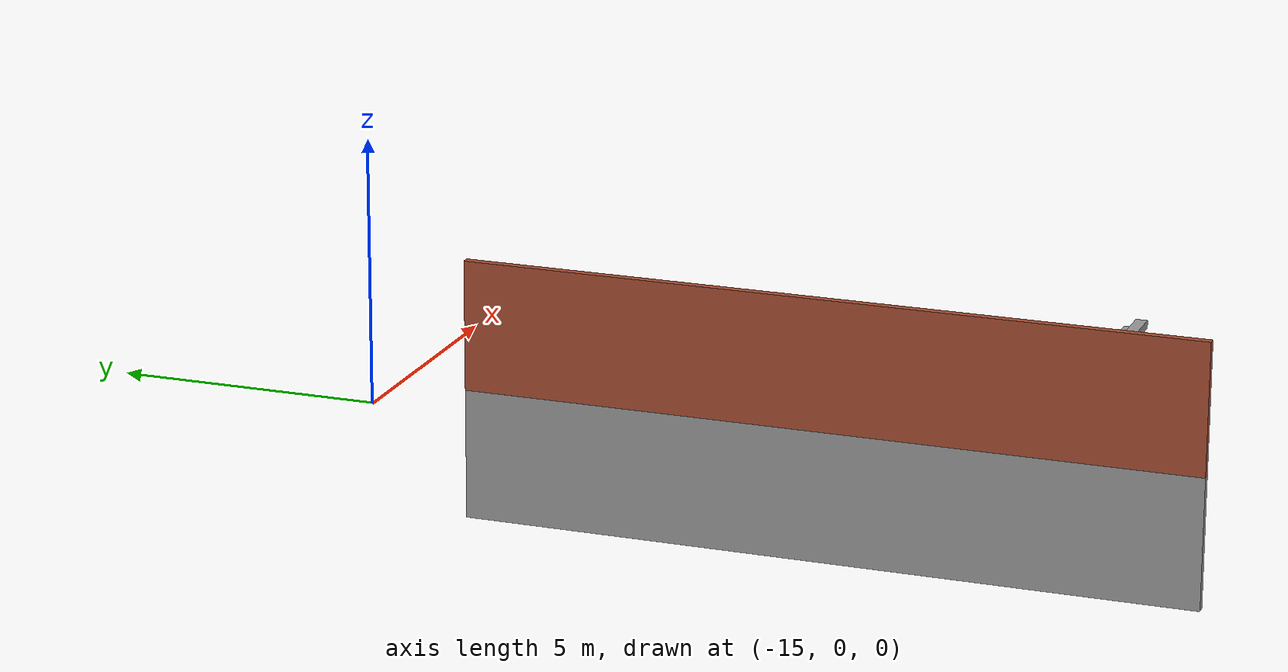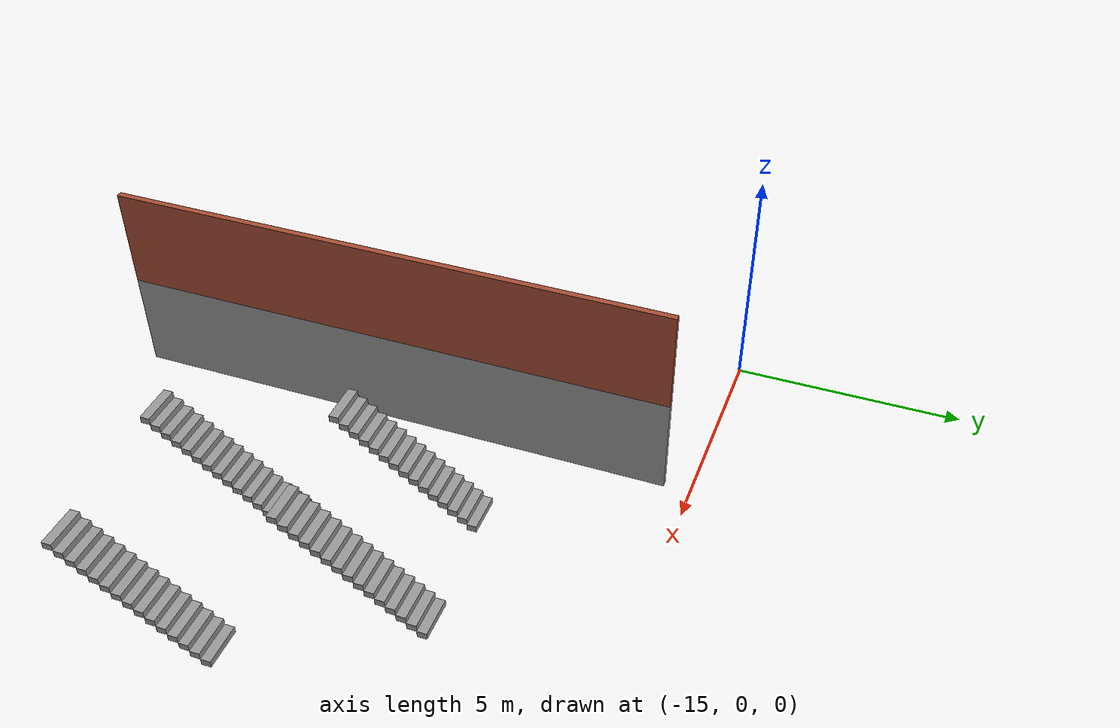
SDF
<sdf version="1.6">
 <world name="default">
  <model name="Untitled_2">
   <pose>-1.18521 -8.18185 -2.6 0 -0 0</pose>
   <link name="Stairs_37">
    <visual name="Stairs_37_Visual_0">
     <pose>-9.65643 3.27846 0.083333 0 -0 0</pose>
     <geometry><box><size>1 0.233333 0.166667</size></box></geometry>
     <material>
      <script><uri>file://media/materials/scripts/gazebo.material</uri><name>Gazebo/Grey</name></script>
      <ambient>1 1 1 1</ambient>
     </material>
     <meta><layer>0</layer></meta>
    </visual>
    <collision name="Stairs_37_Collision_0">
     <geometry><box><size>1 0.233333 0.166667</size></box></geometry>
     <pose>-9.65643 3.27846 0.083333 0 -0 0</pose>
    </collision>
    <visual name="Stairs_37_Visual_1">
     <pose>-9.65643 3.04513 0.25 0 -0 0</pose>
     <geometry><box><size>1 0.233333 0.166667</size></box></geometry>
     <material>
      <script><uri>file://media/materials/scripts/gazebo.material</uri><name>Gazebo/Grey</name></script>
      <ambient>1 1 1 1</ambient>
     </material>
     <meta><layer>0</layer></meta>
    </visual>
    <collision name="Stairs_37_Collision_1">
     <geometry><box><size>1 0.233333 0.166667</size></box></geometry>
     <pose>-9.65643 3.04513 0.25 0 -0 0</pose>
    </collision>
    <visual name="Stairs_37_Visual_2">
     <pose>-9.65643 2.8118 0.416667 0 -0 0</pose>
     <geometry><box><size>1 0.233333 0.166667</size></box></geometry>
     <material>
      <script><uri>file://media/materials/scripts/gazebo.material</uri><name>Gazebo/Grey</name></script>
      <ambient>1 1 1 1</ambient>
     </material>
     <meta><layer>0</layer></meta>
    </visual>
    <collision name="Stairs_37_Collision_2">
     <geometry><box><size>1 0.233333 0.166667</size></box></geometry>
     <pose>-9.65643 2.8118 0.416667 0 -0 0</pose>
    </collision>
    <visual name="Stairs_37_Visual_3">
     <pose>-9.65643 2.57846 0.583333 0 -0 0</pose>
     <geometry><box><size>1 0.233333 0.166667</size></box></geometry>
     <material>
      <script><uri>file://media/materials/scripts/gazebo.material</uri><name>Gazebo/Grey</name></script>
      <ambient>1 1 1 1</ambient>
     </material>
     <meta><layer>0</layer></meta>
    </visual>
    <collision name="Stairs_37_Collision_3">
     <geometry><box><size>1 0.233333 0.166667</size></box></geometry>
     <pose>-9.65643 2.57846 0.583333 0 -0 0</pose>
    </collision>
    <visual name="Stairs_37_Visual_4">
     <pose>-9.65643 2.34513 0.75 0 -0 0</pose>
     <geometry><box><size>1 0.233333 0.166667</size></box></geometry>
     <material>
      <script><uri>file://media/materials/scripts/gazebo.material</uri><name>Gazebo/Grey</name></script>
      <ambient>1 1 1 1</ambient>
     </material>
     <meta><layer>0</layer></meta>
    </visual>
    <collision name="Stairs_37_Collision_4">
     <geometry><box><size>1 0.233333 0.166667</size></box></geometry>
     <pose>-9.65643 2.34513 0.75 0 -0 0</pose>
    </collision>
    <visual name="Stairs_37_Visual_5">
     <pose>-9.65643 2.1118 0.916667 0 -0 0</pose>
     <geometry><box><size>1 0.233333 0.166667</size></box></geometry>
     <material>
      <script><uri>file://media/materials/scripts/gazebo.material</uri><name>Gazebo/Grey</name></script>
      <ambient>1 1 1 1</ambient>
     </material>
     <meta><layer>0</layer></meta>
    </visual>
    <collision name="Stairs_37_Collision_5">
     <geometry><box><size>1 0.233333 0.166667</size></box></geometry>
     <pose>-9.65643 2.1118 0.916667 0 -0 0</pose>
    </collision>
    <visual name="Stairs_37_Visual_6">
     <pose>-9.65643 1.87846 1.08333 0 -0 0</pose>
     <geometry><box><size>1 0.233333 0.166667</size></box></geometry>
     <material>
      <script><uri>file://media/materials/scripts/gazebo.material</uri><name>Gazebo/Grey</name></script>
      <ambient>1 1 1 1</ambient>
     </material>
     <meta><layer>0</layer></meta>
    </visual>
    <collision name="Stairs_37_Collision_6">
     <geometry><box><size>1 0.233333 0.166667</size></box></geometry>
     <pose>-9.65643 1.87846 1.08333 0 -0 0</pose>
    </collision>
    <visual name="Stairs_37_Visual_7">
     <pose>-9.65643 1.64513 1.25 0 -0 0</pose>
     <geometry><box><size>1 0.233333 0.166667</size></box></geometry>
     <material>
      <script><uri>file://media/materials/scripts/gazebo.material</uri><name>Gazebo/Grey</name></script>
      <ambient>1 1 1 1</ambient>
     </material>
     <meta><layer>0</layer></meta>
    </visual>
    <collision name="Stairs_37_Collision_7">
     <geometry><box><size>1 0.233333 0.166667</size></box></geometry>
     <pose>-9.65643 1.64513 1.25 0 -0 0</pose>
    </collision>
    <visual name="Stairs_37_Visual_8">
     <pose>-9.65643 1.4118 1.41667 0 -0 0</pose>
     <geometry><box><size>1 0.233333 0.166667</size></box></geometry>
     <material>
      <script><uri>file://media/materials/scripts/gazebo.material</uri><name>Gazebo/Grey</name></script>
      <ambient>1 1 1 1</ambient>
     </material>
     <meta><layer>0</layer></meta>
    </visual>
    <collision name="Stairs_37_Collision_8">
     <geometry><box><size>1 0.233333 0.166667</size></box></geometry>
     <pose>-9.65643 1.4118 1.41667 0 -0 0</pose>
    </collision>
    <visual name="Stairs_37_Visual_9">
     <pose>-9.65643 1.17846 1.58333 0 -0 0</pose>
     <geometry><box><size>1 0.233333 0.166667</size></box></geometry>
     <material>
      <script><uri>file://media/materials/scripts/gazebo.material</uri><name>Gazebo/Grey</name></script>
      <ambient>1 1 1 1</ambient>
     </material>
     <meta><layer>0</layer></meta>
    </visual>
    <collision name="Stairs_37_Collision_9">
     <geometry><box><size>1 0.233333 0.166667</size></box></geometry>
     <pose>-9.65643 1.17846 1.58333 0 -0 0</pose>
    </collision>
    <visual name="Stairs_37_Visual_10">
     <pose>-9.65643 0.94513 1.75 0 -0 0</pose>
     <geometry><box><size>1 0.233333 0.166667</size></box></geometry>
     <material>
      <script><uri>file://media/materials/scripts/gazebo.material</uri><name>Gazebo/Grey</name></script>
      <ambient>1 1 1 1</ambient>
     </material>
     <meta><layer>0</layer></meta>
    </visual>
    <collision name="Stairs_37_Collision_10">
     <geometry><box><size>1 0.233333 0.166667</size></box></geometry>
     <pose>-9.65643 0.94513 1.75 0 -0 0</pose>
    </collision>
    <visual name="Stairs_37_Visual_11">
     <pose>-9.65643 0.711797 1.91667 0 -0 0</pose>
     <geometry><box><size>1 0.233333 0.166667</size></box></geometry>
     <material>
      <script><uri>file://media/materials/scripts/gazebo.material</uri><name>Gazebo/Grey</name></script>
      <ambient>1 1 1 1</ambient>
     </material>
     <meta><layer>0</layer></meta>
    </visual>
    <collision name="Stairs_37_Collision_11">
     <geometry><box><size>1 0.233333 0.166667</size></box></geometry>
     <pose>-9.65643 0.711797 1.91667 0 -0 0</pose>
    </collision>
    <visual name="Stairs_37_Visual_12">
     <pose>-9.65643 0.478463 2.08333 0 -0 0</pose>
     <geometry><box><size>1 0.233333 0.166667</size></box></geometry>
     <material>
      <script><uri>file://media/materials/scripts/gazebo.material</uri><name>Gazebo/Grey</name></script>
      <ambient>1 1 1 1</ambient>
     </material>
     <meta><layer>0</layer></meta>
    </visual>
    <collision name="Stairs_37_Collision_12">
     <geometry><box><size>1 0.233333 0.166667</size></box></geometry>
     <pose>-9.65643 0.478463 2.08333 0 -0 0</pose>
    </collision>
    <visual name="Stairs_37_Visual_13">
     <pose>-9.65643 0.24513 2.25 0 -0 0</pose>
     <geometry><box><size>1 0.233333 0.166667</size></box></geometry>
     <material>
      <script><uri>file://media/materials/scripts/gazebo.material</uri><name>Gazebo/Grey</name></script>
      <ambient>1 1 1 1</ambient>
     </material>
     <meta><layer>0</layer></meta>
    </visual>
    <collision name="Stairs_37_Collision_13">
     <geometry><box><size>1 0.233333 0.166667</size></box></geometry>
     <pose>-9.65643 0.24513 2.25 0 -0 0</pose>
    </collision>
    <visual name="Stairs_37_Visual_14">
     <pose>-9.65643 0.011797 2.41667 0 -0 0</pose>
     <geometry><box><size>1 0.233333 0.166667</size></box></geometry>
     <material>
      <script><uri>file://media/materials/scripts/gazebo.material</uri><name>Gazebo/Grey</name></script>
      <ambient>1 1 1 1</ambient>
     </material>
     <meta><layer>0</layer></meta>
    </visual>
    <collision name="Stairs_37_Collision_14">
     <geometry><box><size>1 0.233333 0.166667</size></box></geometry>
     <pose>-9.65643 0.011797 2.41667 0 -0 0</pose>
    </collision>
   </link>
   <link name="Stairs_38">
    <visual name="Stairs_38_Visual_0">
     <pose>-8.15228 -0.674291 0.083333 0 -0 0</pose>
     <geometry><box><size>1 0.233333 0.166667</size></box></geometry>
     <material>
      <script><uri>file://media/materials/scripts/gazebo.material</uri><name>Gazebo/Grey</name></script>
      <ambient>1 1 1 1</ambient>
     </material>
     <meta><layer>0</layer></meta>
    </visual>
    <collision name="Stairs_38_Collision_0">
     <geometry><box><size>1 0.233333 0.166667</size></box></geometry>
     <pose>-8.15228 -0.674291 0.083333 0 -0 0</pose>
    </collision>
    <visual name="Stairs_38_Visual_1">
     <pose>-8.15228 -0.907624 0.25 0 -0 0</pose>
     <geometry><box><size>1 0.233333 0.166667</size></box></geometry>
     <material>
      <script><uri>file://media/materials/scripts/gazebo.material</uri><name>Gazebo/Grey</name></script>
      <ambient>1 1 1 1</ambient>
     </material>
     <meta><layer>0</layer></meta>
    </visual>
    <collision name="Stairs_38_Collision_1">
     <geometry><box><size>1 0.233333 0.166667</size></box></geometry>
     <pose>-8.15228 -0.907624 0.25 0 -0 0</pose>
    </collision>
    <visual name="Stairs_38_Visual_2">
     <pose>-8.15228 -1.14096 0.416667 0 -0 0</pose>
     <geometry><box><size>1 0.233333 0.166667</size></box></geometry>
     <material>
      <script><uri>file://media/materials/scripts/gazebo.material</uri><name>Gazebo/Grey</name></script>
      <ambient>1 1 1 1</ambient>
     </material>
     <meta><layer>0</layer></meta>
    </visual>
    <collision name="Stairs_38_Collision_2">
     <geometry><box><size>1 0.233333 0.166667</size></box></geometry>
     <pose>-8.15228 -1.14096 0.416667 0 -0 0</pose>
    </collision>
    <visual name="Stairs_38_Visual_3">
     <pose>-8.15228 -1.37429 0.583333 0 -0 0</pose>
     <geometry><box><size>1 0.233333 0.166667</size></box></geometry>
     <material>
      <script><uri>file://media/materials/scripts/gazebo.material</uri><name>Gazebo/Grey</name></script>
      <ambient>1 1 1 1</ambient>
     </material>
     <meta><layer>0</layer></meta>
    </visual>
    <collision name="Stairs_38_Collision_3">
     <geometry><box><size>1 0.233333 0.166667</size></box></geometry>
     <pose>-8.15228 -1.37429 0.583333 0 -0 0</pose>
    </collision>
    <visual name="Stairs_38_Visual_4">
     <pose>-8.15228 -1.60762 0.75 0 -0 0</pose>
     <geometry><box><size>1 0.233333 0.166667</size></box></geometry>
     <material>
      <script><uri>file://media/materials/scripts/gazebo.material</uri><name>Gazebo/Grey</name></script>
      <ambient>1 1 1 1</ambient>
     </material>
     <meta><layer>0</layer></meta>
    </visual>
    <collision name="Stairs_38_Collision_4">
     <geometry><box><size>1 0.233333 0.166667</size></box></geometry>
     <pose>-8.15228 -1.60762 0.75 0 -0 0</pose>
    </collision>
    <visual name="Stairs_38_Visual_5">
     <pose>-8.15228 -1.84096 0.916667 0 -0 0</pose>
     <geometry><box><size>1 0.233333 0.166667</size></box></geometry>
     <material>
      <script><uri>file://media/materials/scripts/gazebo.material</uri><name>Gazebo/Grey</name></script>
      <ambient>1 1 1 1</ambient>
     </material>
     <meta><layer>0</layer></meta>
    </visual>
    <collision name="Stairs_38_Collision_5">
     <geometry><box><size>1 0.233333 0.166667</size></box></geometry>
     <pose>-8.15228 -1.84096 0.916667 0 -0 0</pose>
    </collision>
    <visual name="Stairs_38_Visual_6">
     <pose>-8.15228 -2.07429 1.08333 0 -0 0</pose>
     <geometry><box><size>1 0.233333 0.166667</size></box></geometry>
     <material>
      <script><uri>file://media/materials/scripts/gazebo.material</uri><name>Gazebo/Grey</name></script>
      <ambient>1 1 1 1</ambient>
     </material>
     <meta><layer>0</layer></meta>
    </visual>
    <collision name="Stairs_38_Collision_6">
     <geometry><box><size>1 0.233333 0.166667</size></box></geometry>
     <pose>-8.15228 -2.07429 1.08333 0 -0 0</pose>
    </collision>
    <visual name="Stairs_38_Visual_7">
     <pose>-8.15228 -2.30762 1.25 0 -0 0</pose>
     <geometry><box><size>1 0.233333 0.166667</size></box></geometry>
     <material>
      <script><uri>file://media/materials/scripts/gazebo.material</uri><name>Gazebo/Grey</name></script>
      <ambient>1 1 1 1</ambient>
     </material>
     <meta><layer>0</layer></meta>
    </visual>
    <collision name="Stairs_38_Collision_7">
     <geometry><box><size>1 0.233333 0.166667</size></box></geometry>
     <pose>-8.15228 -2.30762 1.25 0 -0 0</pose>
    </collision>
    <visual name="Stairs_38_Visual_8">
     <pose>-8.15228 -2.54096 1.41667 0 -0 0</pose>
     <geometry><box><size>1 0.233333 0.166667</size></box></geometry>
     <material>
      <script><uri>file://media/materials/scripts/gazebo.material</uri><name>Gazebo/Grey</name></script>
      <ambient>1 1 1 1</ambient>
     </material>
     <meta><layer>0</layer></meta>
    </visual>
    <collision name="Stairs_38_Collision_8">
     <geometry><box><size>1 0.233333 0.166667</size></box></geometry>
     <pose>-8.15228 -2.54096 1.41667 0 -0 0</pose>
    </collision>
    <visual name="Stairs_38_Visual_9">
     <pose>-8.15228 -2.77429 1.58333 0 -0 0</pose>
     <geometry><box><size>1 0.233333 0.166667</size></box></geometry>
     <material>
      <script><uri>file://media/materials/scripts/gazebo.material</uri><name>Gazebo/Grey</name></script>
      <ambient>1 1 1 1</ambient>
     </material>
     <meta><layer>0</layer></meta>
    </visual>
    <collision name="Stairs_38_Collision_9">
     <geometry><box><size>1 0.233333 0.166667</size></box></geometry>
     <pose>-8.15228 -2.77429 1.58333 0 -0 0</pose>
    </collision>
    <visual name="Stairs_38_Visual_10">
     <pose>-8.15228 -3.00762 1.75 0 -0 0</pose>
     <geometry><box><size>1 0.233333 0.166667</size></box></geometry>
     <material>
      <script><uri>file://media/materials/scripts/gazebo.material</uri><name>Gazebo/Grey</name></script>
      <ambient>1 1 1 1</ambient>
     </material>
     <meta><layer>0</layer></meta>
    </visual>
    <collision name="Stairs_38_Collision_10">
     <geometry><box><size>1 0.233333 0.166667</size></box></geometry>
     <pose>-8.15228 -3.00762 1.75 0 -0 0</pose>
    </collision>
    <visual name="Stairs_38_Visual_11">
     <pose>-8.15228 -3.24096 1.91667 0 -0 0</pose>
     <geometry><box><size>1 0.233333 0.166667</size></box></geometry>
     <material>
      <script><uri>file://media/materials/scripts/gazebo.material</uri><name>Gazebo/Grey</name></script>
      <ambient>1 1 1 1</ambient>
     </material>
     <meta><layer>0</layer></meta>
    </visual>
    <collision name="Stairs_38_Collision_11">
     <geometry><box><size>1 0.233333 0.166667</size></box></geometry>
     <pose>-8.15228 -3.24096 1.91667 0 -0 0</pose>
    </collision>
    <visual name="Stairs_38_Visual_12">
     <pose>-8.15228 -3.47429 2.08333 0 -0 0</pose>
     <geometry><box><size>1 0.233333 0.166667</size></box></geometry>
     <material>
      <script><uri>file://media/materials/scripts/gazebo.material</uri><name>Gazebo/Grey</name></script>
      <ambient>1 1 1 1</ambient>
     </material>
     <meta><layer>0</layer></meta>
    </visual>
    <collision name="Stairs_38_Collision_12">
     <geometry><box><size>1 0.233333 0.166667</size></box></geometry>
     <pose>-8.15228 -3.47429 2.08333 0 -0 0</pose>
    </collision>
    <visual name="Stairs_38_Visual_13">
     <pose>-8.15228 -3.70762 2.25 0 -0 0</pose>
     <geometry><box><size>1 0.233333 0.166667</size></box></geometry>
     <material>
      <script><uri>file://media/materials/scripts/gazebo.material</uri><name>Gazebo/Grey</name></script>
      <ambient>1 1 1 1</ambient>
     </material>
     <meta><layer>0</layer></meta>
    </visual>
    <collision name="Stairs_38_Collision_13">
     <geometry><box><size>1 0.233333 0.166667</size></box></geometry>
     <pose>-8.15228 -3.70762 2.25 0 -0 0</pose>
    </collision>
    <visual name="Stairs_38_Visual_14">
     <pose>-8.15228 -3.94096 2.41667 0 -0 0</pose>
     <geometry><box><size>1 0.233333 0.166667</size></box></geometry>
     <material>
      <script><uri>file://media/materials/scripts/gazebo.material</uri><name>Gazebo/Grey</name></script>
      <ambient>1 1 1 1</ambient>
     </material>
     <meta><layer>0</layer></meta>
    </visual>
    <collision name="Stairs_38_Collision_14">
     <geometry><box><size>1 0.233333 0.166667</size></box></geometry>
     <pose>-8.15228 -3.94096 2.41667 0 -0 0</pose>
    </collision>
   </link>
   <link name="Stairs_39">
    <visual name="Stairs_39_Visual_0">
     <pose>-6.40328 3.48834 0.083333 0 -0 0</pose>
     <geometry><box><size>1 0.233333 0.166667</size></box></geometry>
     <material>
      <script><uri>file://media/materials/scripts/gazebo.material</uri><name>Gazebo/Grey</name></script>
      <ambient>1 1 1 1</ambient>
     </material>
     <meta><layer>0</layer></meta>
    </visual>
    <collision name="Stairs_39_Collision_0">
     <geometry><box><size>1 0.233333 0.166667</size></box></geometry>
     <pose>-6.40328 3.48834 0.083333 0 -0 0</pose>
    </collision>
    <visual name="Stairs_39_Visual_1">
     <pose>-6.40328 3.25501 0.25 0 -0 0</pose>
     <geometry><box><size>1 0.233333 0.166667</size></box></geometry>
     <material>
      <script><uri>file://media/materials/scripts/gazebo.material</uri><name>Gazebo/Grey</name></script>
      <ambient>1 1 1 1</ambient>
     </material>
     <meta><layer>0</layer></meta>
    </visual>
    <collision name="Stairs_39_Collision_1">
     <geometry><box><size>1 0.233333 0.166667</size></box></geometry>
     <pose>-6.40328 3.25501 0.25 0 -0 0</pose>
    </collision>
    <visual name="Stairs_39_Visual_2">
     <pose>-6.40328 3.02168 0.416667 0 -0 0</pose>
     <geometry><box><size>1 0.233333 0.166667</size></box></geometry>
     <material>
      <script><uri>file://media/materials/scripts/gazebo.material</uri><name>Gazebo/Grey</name></script>
      <ambient>1 1 1 1</ambient>
     </material>
     <meta><layer>0</layer></meta>
    </visual>
    <collision name="Stairs_39_Collision_2">
     <geometry><box><size>1 0.233333 0.166667</size></box></geometry>
     <pose>-6.40328 3.02168 0.416667 0 -0 0</pose>
    </collision>
    <visual name="Stairs_39_Visual_3">
     <pose>-6.40328 2.78834 0.583333 0 -0 0</pose>
     <geometry><box><size>1 0.233333 0.166667</size></box></geometry>
     <material>
      <script><uri>file://media/materials/scripts/gazebo.material</uri><name>Gazebo/Grey</name></script>
      <ambient>1 1 1 1</ambient>
     </material>
     <meta><layer>0</layer></meta>
    </visual>
    <collision name="Stairs_39_Collision_3">
     <geometry><box><size>1 0.233333 0.166667</size></box></geometry>
     <pose>-6.40328 2.78834 0.583333 0 -0 0</pose>
    </collision>
    <visual name="Stairs_39_Visual_4">
     <pose>-6.40328 2.55501 0.75 0 -0 0</pose>
     <geometry><box><size>1 0.233333 0.166667</size></box></geometry>
     <material>
      <script><uri>file://media/materials/scripts/gazebo.material</uri><name>Gazebo/Grey</name></script>
      <ambient>1 1 1 1</ambient>
     </material>
     <meta><layer>0</layer></meta>
    </visual>
    <collision name="Stairs_39_Collision_4">
     <geometry><box><size>1 0.233333 0.166667</size></box></geometry>
     <pose>-6.40328 2.55501 0.75 0 -0 0</pose>
    </collision>
    <visual name="Stairs_39_Visual_5">
     <pose>-6.40328 2.32168 0.916667 0 -0 0</pose>
     <geometry><box><size>1 0.233333 0.166667</size></box></geometry>
     <material>
      <script><uri>file://media/materials/scripts/gazebo.material</uri><name>Gazebo/Grey</name></script>
      <ambient>1 1 1 1</ambient>
     </material>
     <meta><layer>0</layer></meta>
    </visual>
    <collision name="Stairs_39_Collision_5">
     <geometry><box><size>1 0.233333 0.166667</size></box></geometry>
     <pose>-6.40328 2.32168 0.916667 0 -0 0</pose>
    </collision>
    <visual name="Stairs_39_Visual_6">
     <pose>-6.40328 2.08834 1.08333 0 -0 0</pose>
     <geometry><box><size>1 0.233333 0.166667</size></box></geometry>
     <material>
      <script><uri>file://media/materials/scripts/gazebo.material</uri><name>Gazebo/Grey</name></script>
      <ambient>1 1 1 1</ambient>
     </material>
     <meta><layer>0</layer></meta>
    </visual>
    <collision name="Stairs_39_Collision_6">
     <geometry><box><size>1 0.233333 0.166667</size></box></geometry>
     <pose>-6.40328 2.08834 1.08333 0 -0 0</pose>
    </collision>
    <visual name="Stairs_39_Visual_7">
     <pose>-6.40328 1.85501 1.25 0 -0 0</pose>
     <geometry><box><size>1 0.233333 0.166667</size></box></geometry>
     <material>
      <script><uri>file://media/materials/scripts/gazebo.material</uri><name>Gazebo/Grey</name></script>
      <ambient>1 1 1 1</ambient>
     </material>
     <meta><layer>0</layer></meta>
    </visual>
    <collision name="Stairs_39_Collision_7">
     <geometry><box><size>1 0.233333 0.166667</size></box></geometry>
     <pose>-6.40328 1.85501 1.25 0 -0 0</pose>
    </collision>
    <visual name="Stairs_39_Visual_8">
     <pose>-6.40328 1.62168 1.41667 0 -0 0</pose>
     <geometry><box><size>1 0.233333 0.166667</size></box></geometry>
     <material>
      <script><uri>file://media/materials/scripts/gazebo.material</uri><name>Gazebo/Grey</name></script>
      <ambient>1 1 1 1</ambient>
     </material>
     <meta><layer>0</layer></meta>
    </visual>
    <collision name="Stairs_39_Collision_8">
     <geometry><box><size>1 0.233333 0.166667</size></box></geometry>
     <pose>-6.40328 1.62168 1.41667 0 -0 0</pose>
    </collision>
    <visual name="Stairs_39_Visual_9">
     <pose>-6.40328 1.38834 1.58333 0 -0 0</pose>
     <geometry><box><size>1 0.233333 0.166667</size></box></geometry>
     <material>
      <script><uri>file://media/materials/scripts/gazebo.material</uri><name>Gazebo/Grey</name></script>
      <ambient>1 1 1 1</ambient>
     </material>
     <meta><layer>0</layer></meta>
    </visual>
    <collision name="Stairs_39_Collision_9">
     <geometry><box><size>1 0.233333 0.166667</size></box></geometry>
     <pose>-6.40328 1.38834 1.58333 0 -0 0</pose>
    </collision>
    <visual name="Stairs_39_Visual_10">
     <pose>-6.40328 1.15501 1.75 0 -0 0</pose>
     <geometry><box><size>1 0.233333 0.166667</size></box></geometry>
     <material>
      <script><uri>file://media/materials/scripts/gazebo.material</uri><name>Gazebo/Grey</name></script>
      <ambient>1 1 1 1</ambient>
     </material>
     <meta><layer>0</layer></meta>
    </visual>
    <collision name="Stairs_39_Collision_10">
     <geometry><box><size>1 0.233333 0.166667</size></box></geometry>
     <pose>-6.40328 1.15501 1.75 0 -0 0</pose>
    </collision>
    <visual name="Stairs_39_Visual_11">
     <pose>-6.40328 0.921678 1.91667 0 -0 0</pose>
     <geometry><box><size>1 0.233333 0.166667</size></box></geometry>
     <material>
      <script><uri>file://media/materials/scripts/gazebo.material</uri><name>Gazebo/Grey</name></script>
      <ambient>1 1 1 1</ambient>
     </material>
     <meta><layer>0</layer></meta>
    </visual>
    <collision name="Stairs_39_Collision_11">
     <geometry><box><size>1 0.233333 0.166667</size></box></geometry>
     <pose>-6.40328 0.921678 1.91667 0 -0 0</pose>
    </collision>
    <visual name="Stairs_39_Visual_12">
     <pose>-6.40328 0.688344 2.08333 0 -0 0</pose>
     <geometry><box><size>1 0.233333 0.166667</size></box></geometry>
     <material>
      <script><uri>file://media/materials/scripts/gazebo.material</uri><name>Gazebo/Grey</name></script>
      <ambient>1 1 1 1</ambient>
     </material>
     <meta><layer>0</layer></meta>
    </visual>
    <collision name="Stairs_39_Collision_12">
     <geometry><box><size>1 0.233333 0.166667</size></box></geometry>
     <pose>-6.40328 0.688344 2.08333 0 -0 0</pose>
    </collision>
    <visual name="Stairs_39_Visual_13">
     <pose>-6.40328 0.455011 2.25 0 -0 0</pose>
     <geometry><box><size>1 0.233333 0.166667</size></box></geometry>
     <material>
      <script><uri>file://media/materials/scripts/gazebo.material</uri><name>Gazebo/Grey</name></script>
      <ambient>1 1 1 1</ambient>
     </material>
     <meta><layer>0</layer></meta>
    </visual>
    <collision name="Stairs_39_Collision_13">
     <geometry><box><size>1 0.233333 0.166667</size></box></geometry>
     <pose>-6.40328 0.455011 2.25 0 -0 0</pose>
    </collision>
    <visual name="Stairs_39_Visual_14">
     <pose>-6.40328 0.221678 2.41667 0 -0 0</pose>
     <geometry><box><size>1 0.233333 0.166667</size></box></geometry>
     <material>
      <script><uri>file://media/materials/scripts/gazebo.material</uri><name>Gazebo/Grey</name></script>
      <ambient>1 1 1 1</ambient>
     </material>
     <meta><layer>0</layer></meta>
    </visual>
    <collision name="Stairs_39_Collision_14">
     <geometry><box><size>1 0.233333 0.166667</size></box></geometry>
     <pose>-6.40328 0.221678 2.41667 0 -0 0</pose>
    </collision>
   </link>
   <link name="Stairs_40">
    <visual name="Stairs_40_Visual_0">
     <pose>-4.16455 -0.42943 0.083333 0 -0 0</pose>
     <geometry><box><size>1 0.233333 0.166667</size></box></geometry>
     <material>
      <script><uri>file://media/materials/scripts/gazebo.material</uri><name>Gazebo/Grey</name></script>
      <ambient>1 1 1 1</ambient>
     </material>
     <meta><layer>0</layer></meta>
    </visual>
    <collision name="Stairs_40_Collision_0">
     <geometry><box><size>1 0.233333 0.166667</size></box></geometry>
     <pose>-4.16455 -0.42943 0.083333 0 -0 0</pose>
    </collision>
    <visual name="Stairs_40_Visual_1">
     <pose>-4.16455 -0.662764 0.25 0 -0 0</pose>
     <geometry><box><size>1 0.233333 0.166667</size></box></geometry>
     <material>
      <script><uri>file://media/materials/scripts/gazebo.material</uri><name>Gazebo/Grey</name></script>
      <ambient>1 1 1 1</ambient>
     </material>
     <meta><layer>0</layer></meta>
    </visual>
    <collision name="Stairs_40_Collision_1">
     <geometry><box><size>1 0.233333 0.166667</size></box></geometry>
     <pose>-4.16455 -0.662764 0.25 0 -0 0</pose>
    </collision>
    <visual name="Stairs_40_Visual_2">
     <pose>-4.16455 -0.896096 0.416667 0 -0 0</pose>
     <geometry><box><size>1 0.233333 0.166667</size></box></geometry>
     <material>
      <script><uri>file://media/materials/scripts/gazebo.material</uri><name>Gazebo/Grey</name></script>
      <ambient>1 1 1 1</ambient>
     </material>
     <meta><layer>0</layer></meta>
    </visual>
    <collision name="Stairs_40_Collision_2">
     <geometry><box><size>1 0.233333 0.166667</size></box></geometry>
     <pose>-4.16455 -0.896096 0.416667 0 -0 0</pose>
    </collision>
    <visual name="Stairs_40_Visual_3">
     <pose>-4.16455 -1.12943 0.583333 0 -0 0</pose>
     <geometry><box><size>1 0.233333 0.166667</size></box></geometry>
     <material>
      <script><uri>file://media/materials/scripts/gazebo.material</uri><name>Gazebo/Grey</name></script>
      <ambient>1 1 1 1</ambient>
     </material>
     <meta><layer>0</layer></meta>
    </visual>
    <collision name="Stairs_40_Collision_3">
     <geometry><box><size>1 0.233333 0.166667</size></box></geometry>
     <pose>-4.16455 -1.12943 0.583333 0 -0 0</pose>
    </collision>
    <visual name="Stairs_40_Visual_4">
     <pose>-4.16455 -1.36276 0.75 0 -0 0</pose>
     <geometry><box><size>1 0.233333 0.166667</size></box></geometry>
     <material>
      <script><uri>file://media/materials/scripts/gazebo.material</uri><name>Gazebo/Grey</name></script>
      <ambient>1 1 1 1</ambient>
     </material>
     <meta><layer>0</layer></meta>
    </visual>
    <collision name="Stairs_40_Collision_4">
     <geometry><box><size>1 0.233333 0.166667</size></box></geometry>
     <pose>-4.16455 -1.36276 0.75 0 -0 0</pose>
    </collision>
    <visual name="Stairs_40_Visual_5">
     <pose>-4.16455 -1.5961 0.916667 0 -0 0</pose>
     <geometry><box><size>1 0.233333 0.166667</size></box></geometry>
     <material>
      <script><uri>file://media/materials/scripts/gazebo.material</uri><name>Gazebo/Grey</name></script>
      <ambient>1 1 1 1</ambient>
     </material>
     <meta><layer>0</layer></meta>
    </visual>
    <collision name="Stairs_40_Collision_5">
     <geometry><box><size>1 0.233333 0.166667</size></box></geometry>
     <pose>-4.16455 -1.5961 0.916667 0 -0 0</pose>
    </collision>
    <visual name="Stairs_40_Visual_6">
     <pose>-4.16455 -1.82943 1.08333 0 -0 0</pose>
     <geometry><box><size>1 0.233333 0.166667</size></box></geometry>
     <material>
      <script><uri>file://media/materials/scripts/gazebo.material</uri><name>Gazebo/Grey</name></script>
      <ambient>1 1 1 1</ambient>
     </material>
     <meta><layer>0</layer></meta>
    </visual>
    <collision name="Stairs_40_Collision_6">
     <geometry><box><size>1 0.233333 0.166667</size></box></geometry>
     <pose>-4.16455 -1.82943 1.08333 0 -0 0</pose>
    </collision>
    <visual name="Stairs_40_Visual_7">
     <pose>-4.16455 -2.06276 1.25 0 -0 0</pose>
     <geometry><box><size>1 0.233333 0.166667</size></box></geometry>
     <material>
      <script><uri>file://media/materials/scripts/gazebo.material</uri><name>Gazebo/Grey</name></script>
      <ambient>1 1 1 1</ambient>
     </material>
     <meta><layer>0</layer></meta>
    </visual>
    <collision name="Stairs_40_Collision_7">
     <geometry><box><size>1 0.233333 0.166667</size></box></geometry>
     <pose>-4.16455 -2.06276 1.25 0 -0 0</pose>
    </collision>
    <visual name="Stairs_40_Visual_8">
     <pose>-4.16455 -2.2961 1.41667 0 -0 0</pose>
     <geometry><box><size>1 0.233333 0.166667</size></box></geometry>
     <material>
      <script><uri>file://media/materials/scripts/gazebo.material</uri><name>Gazebo/Grey</name></script>
      <ambient>1 1 1 1</ambient>
     </material>
     <meta><layer>0</layer></meta>
    </visual>
    <collision name="Stairs_40_Collision_8">
     <geometry><box><size>1 0.233333 0.166667</size></box></geometry>
     <pose>-4.16455 -2.2961 1.41667 0 -0 0</pose>
    </collision>
    <visual name="Stairs_40_Visual_9">
     <pose>-4.16455 -2.52943 1.58333 0 -0 0</pose>
     <geometry><box><size>1 0.233333 0.166667</size></box></geometry>
     <material>
      <script><uri>file://media/materials/scripts/gazebo.material</uri><name>Gazebo/Grey</name></script>
      <ambient>1 1 1 1</ambient>
     </material>
     <meta><layer>0</layer></meta>
    </visual>
    <collision name="Stairs_40_Collision_9">
     <geometry><box><size>1 0.233333 0.166667</size></box></geometry>
     <pose>-4.16455 -2.52943 1.58333 0 -0 0</pose>
    </collision>
    <visual name="Stairs_40_Visual_10">
     <pose>-4.16455 -2.76276 1.75 0 -0 0</pose>
     <geometry><box><size>1 0.233333 0.166667</size></box></geometry>
     <material>
      <script><uri>file://media/materials/scripts/gazebo.material</uri><name>Gazebo/Grey</name></script>
      <ambient>1 1 1 1</ambient>
     </material>
     <meta><layer>0</layer></meta>
    </visual>
    <collision name="Stairs_40_Collision_10">
     <geometry><box><size>1 0.233333 0.166667</size></box></geometry>
     <pose>-4.16455 -2.76276 1.75 0 -0 0</pose>
    </collision>
    <visual name="Stairs_40_Visual_11">
     <pose>-4.16455 -2.9961 1.91667 0 -0 0</pose>
     <geometry><box><size>1 0.233333 0.166667</size></box></geometry>
     <material>
      <script><uri>file://media/materials/scripts/gazebo.material</uri><name>Gazebo/Grey</name></script>
      <ambient>1 1 1 1</ambient>
     </material>
     <meta><layer>0</layer></meta>
    </visual>
    <collision name="Stairs_40_Collision_11">
     <geometry><box><size>1 0.233333 0.166667</size></box></geometry>
     <pose>-4.16455 -2.9961 1.91667 0 -0 0</pose>
    </collision>
    <visual name="Stairs_40_Visual_12">
     <pose>-4.16455 -3.22943 2.08333 0 -0 0</pose>
     <geometry><box><size>1 0.233333 0.166667</size></box></geometry>
     <material>
      <script><uri>file://media/materials/scripts/gazebo.material</uri><name>Gazebo/Grey</name></script>
      <ambient>1 1 1 1</ambient>
     </material>
     <meta><layer>0</layer></meta>
    </visual>
    <collision name="Stairs_40_Collision_12">
     <geometry><box><size>1 0.233333 0.166667</size></box></geometry>
     <pose>-4.16455 -3.22943 2.08333 0 -0 0</pose>
    </collision>
    <visual name="Stairs_40_Visual_13">
     <pose>-4.16455 -3.46276 2.25 0 -0 0</pose>
     <geometry><box><size>1 0.233333 0.166667</size></box></geometry>
     <material>
      <script><uri>file://media/materials/scripts/gazebo.material</uri><name>Gazebo/Grey</name></script>
      <ambient>1 1 1 1</ambient>
     </material>
     <meta><layer>0</layer></meta>
    </visual>
    <collision name="Stairs_40_Collision_13">
     <geometry><box><size>1 0.233333 0.166667</size></box></geometry>
     <pose>-4.16455 -3.46276 2.25 0 -0 0</pose>
    </collision>
    <visual name="Stairs_40_Visual_14">
     <pose>-4.16455 -3.6961 2.41667 0 -0 0</pose>
     <geometry><box><size>1 0.233333 0.166667</size></box></geometry>
     <material>
      <script><uri>file://media/materials/scripts/gazebo.material</uri><name>Gazebo/Grey</name></script>
      <ambient>1 1 1 1</ambient>
     </material>
     <meta><layer>0</layer></meta>
    </visual>
    <collision name="Stairs_40_Collision_14">
     <geometry><box><size>1 0.233333 0.166667</size></box></geometry>
     <pose>-4.16455 -3.6961 2.41667 0 -0 0</pose>
    </collision>
   </link>
   <link name="Wall_40">
    <collision name="Wall_40_Collision">
     <geometry><box><size>14 0.15 2.5</size></box></geometry>
     <pose>0 0 1.25 0 -0 0</pose>
    </collision>
    <visual name="Wall_40_Visual">
     <pose>0 0 1.25 0 -0 0</pose>
     <geometry><box><size>14 0.15 2.5</size></box></geometry>
     <material>
      <script><uri>file://media/materials/scripts/gazebo.material</uri><name>Gazebo/Grey</name></script>
      <ambient>1 1 1 1</ambient>
     </material>
     <meta><layer>0</layer></meta>
    </visual>
    <pose>-12.175 0 0 0 -0 -1.5708</pose>
   </link>
   <link name="Wall_45">
    <collision name="Wall_45_Collision">
     <geometry><box><size>14 0.15 2.5</size></box></geometry>
     <pose>0 0 1.25 0 -0 0</pose>
    </collision>
    <visual name="Wall_45_Visual">
     <pose>0 0 1.25 0 -0 0</pose>
     <geometry><box><size>14 0.15 2.5</size></box></geometry>
     <material>
      <script><uri>file://media/materials/scripts/gazebo.material</uri><name>Gazebo/Bricks</name></script>
      <ambient>1 1 1 1</ambient>
     </material>
     <meta><layer>1</layer></meta>
    </visual>
    <pose>-12.175 0 2.5 0 -0 -1.5708</pose>
   </link>
   <static>1</static>
  </model>
 </world>
</sdf>
